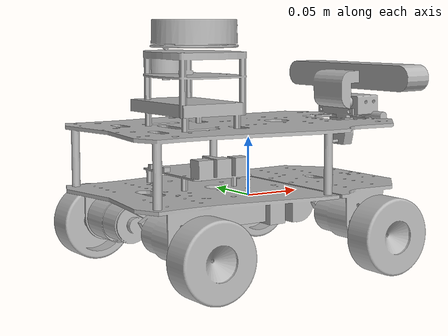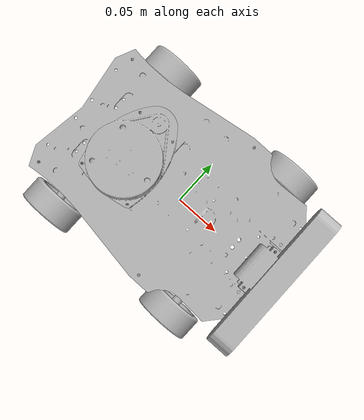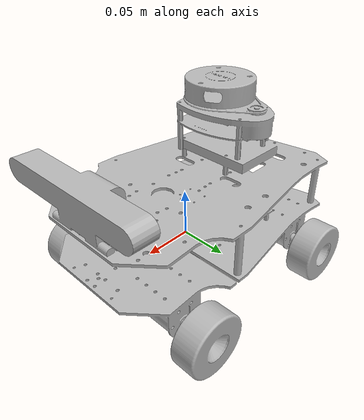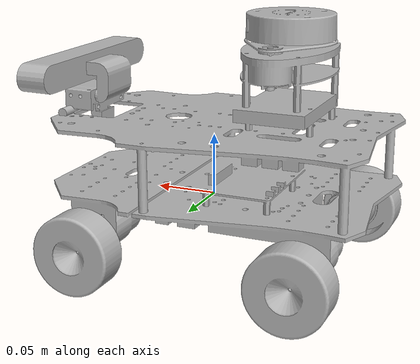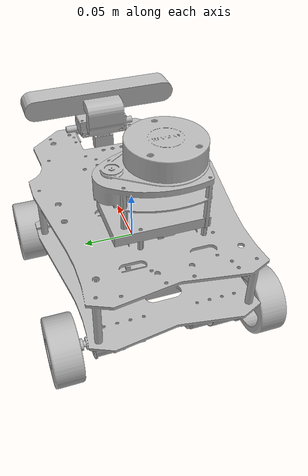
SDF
<?xml version="1.0" ?>
<sdf version="1.6">
  <model name="wheeltec">
    <!-- Base Link -->
    <link name="base_link">
      <visual name="base_visual">
        <pose>0 0 0 0 0 0</pose>
        <geometry>
          <mesh>
            <uri>file://../meshes/mini_4wd/meshes/mini_4wd/base_link.STL</uri>
          </mesh>
        </geometry>
      </visual>
      <collision name="base_collision">
        <pose>0 0 0 0 0 0</pose>
        <geometry>
          <mesh>
            <uri>file://../meshes/mini_4wd/meshes/mini_4wd/base_link.STL</uri>
          </mesh>
        </geometry>
      </collision>
      <inertial>
        <mass>2.5</mass>
        <inertia>
          <ixx>0.01</ixx> <ixy>0</ixy> <ixz>0</ixz>
          <iyy>0.01</iyy> <iyz>0</iyz>
          <izz>0.01</izz>
        </inertia>
      </inertial>
    </link>

    <!-- Right Front Wheel Link -->
    <link name="right_front_wheel_link">
      <visual name="right_front_visual">
        <pose>0.0715 -0.09 -0.027 0 0 0</pose>
        <geometry>
          <mesh>
            <uri>file://../meshes/mini_4wd/meshes/mini_4wd/right_front_wheel_link.STL</uri>
          </mesh>
        </geometry>
      </visual>
      <collision name="right_front_collision">
        <pose>0.0715 -0.09 -0.027 0 0 0</pose>
        <geometry>
          <mesh>
            <uri>file://../meshes/mini_4wd/meshes/mini_4wd/right_front_wheel_link.STL</uri>
          </mesh>
        </geometry>
      </collision>
      <inertial>
        <mass>0.1</mass>
        <inertia>
          <ixx>0.0005</ixx> <ixy>0</ixy> <ixz>0</ixz>
          <iyy>0.0005</iyy> <iyz>0</iyz>
          <izz>0.0005</izz>
        </inertia>
      </inertial>
    </link>
    <joint name="right_front_wheel_joint" type="revolute">
      <parent>base_link</parent>
      <child>right_front_wheel_link</child>
      <pose>0.0715 -0.09 -0.027 0 0 0</pose>
      <axis>
        <xyz>0 1 0</xyz>
        <limit>
          <lower>-1000</lower>
          <upper>1000</upper>
        </limit>
      </axis>
    </joint>

    <!-- Left Front Wheel Link -->
    <link name="left_front_wheel_link">
      <visual name="left_front_visual">
        <pose>0.072 0.09 -0.027 0 0 3.14159</pose>
        <geometry>
          <mesh>
            <uri>file://../meshes/mini_4wd/meshes/mini_4wd/right_front_wheel_link.STL</uri>
          </mesh>
        </geometry>
      </visual>
      <collision name="left_front_collision">
        <pose>0.072 0.09 -0.027 0 0 3.14159</pose>
        <geometry>
          <mesh>
            <uri>file://../meshes/mini_4wd/meshes/mini_4wd/right_front_wheel_link.STL</uri>
          </mesh>
        </geometry>
      </collision>
      <inertial>
        <mass>0.1</mass>
        <inertia>
          <ixx>0.0005</ixx> <ixy>0</ixy> <ixz>0</ixz>
          <iyy>0.0005</iyy> <iyz>0</iyz>
          <izz>0.0005</izz>
        </inertia>
      </inertial>
    </link>
    <joint name="left_front_wheel_joint" type="revolute">
      <parent>base_link</parent>
      <child>left_front_wheel_link</child>
      <pose>0.072 0.09 -0.027 0 0 0</pose>
      <axis>
        <xyz>0 1 0</xyz>
        <limit>
          <lower>-1000</lower>
          <upper>1000</upper>
        </limit>
      </axis>
    </joint>

    <!-- Right Rear Wheel Link -->
    <link name="right_rear_wheel_link">
      <visual name="right_rear_visual">
        <pose>-0.1 -0.09 -0.027 0 0 0</pose>
        <geometry>
          <mesh>
            <uri>file://../meshes/mini_4wd/meshes/mini_4wd/right_front_wheel_link.STL</uri>
          </mesh>
        </geometry>
      </visual>
      <collision name="right_rear_collision">
        <pose>-0.1 -0.09 -0.027 0 0 0</pose>
        <geometry>
          <mesh>
            <uri>file://../meshes/mini_4wd/meshes/mini_4wd/right_front_wheel_link.STL</uri>
          </mesh>
        </geometry>
      </collision>
      <inertial>
        <mass>0.1</mass>
        <inertia>
          <ixx>0.0005</ixx> <ixy>0</ixy> <ixz>0</ixz>
          <iyy>0.0005</iyy> <iyz>0</iyz>
          <izz>0.0005</izz>
        </inertia>
      </inertial>
    </link>
    <joint name="right_rear_wheel_joint" type="revolute">
      <parent>base_link</parent>
      <child>right_rear_wheel_link</child>
      <pose>-0.1 -0.09 -0.027 0 0 0</pose>
      <axis>
        <xyz>0 1 0</xyz>
        <limit>
          <lower>-1000</lower>
          <upper>1000</upper>
        </limit>
      </axis>
    </joint>

    <!-- Left Rear Wheel Link -->
    <link name="left_rear_wheel_link">
      <visual name="left_rear_visual">
        <pose>-0.1 0.09 -0.027 0 0 3.14159</pose>
        <geometry>
          <mesh>
            <uri>file://../meshes/mini_4wd/meshes/mini_4wd/right_front_wheel_link.STL</uri>
          </mesh>
        </geometry>
      </visual>
      <collision name="left_rear_collision">
        <pose>-0.1 0.09 -0.027 0 0 3.14159</pose>
        <geometry>
          <mesh>
            <uri>file://../meshes/mini_4wd/meshes/mini_4wd/right_front_wheel_link.STL</uri>
          </mesh>
        </geometry>
      </collision>
      <inertial>
        <mass>0.1</mass>
        <inertia>
          <ixx>0.0005</ixx> <ixy>0</ixy> <ixz>0</ixz>
          <iyy>0.0005</iyy> <iyz>0</iyz>
          <izz>0.0005</izz>
        </inertia>
      </inertial>
    </link>
    <joint name="left_rear_wheel_joint" type="revolute">
      <parent>base_link</parent>
      <child>left_rear_wheel_link</child>
      <pose>-0.1 0.09 -0.027 0 0 0</pose>
      <axis>
        <xyz>0 1 0</xyz>
        <limit>
          <lower>-1000</lower>
          <upper>1000</upper>
        </limit>
      </axis>
    </joint>

    <!-- Differential Drive Plugin -->
    <plugin name="diff_drive" filename="libgazebo_ros_diff_drive.so">
      <ros>
        <namespace>wheeltec</namespace> <!-- No leading slash -->
        <remapping>odom:=odom</remapping>
        <remapping>cmd_vel:=cmd_vel</remapping>
      </ros>
      <left_joint>left_rear_wheel_joint</left_joint>
      <right_joint>right_rear_wheel_joint</right_joint>
      <wheel_separation>0.18</wheel_separation>
      <wheel_diameter>0.075</wheel_diameter>
      <max_wheel_torque>10.0</max_wheel_torque>
      <max_wheel_acceleration>5.0</max_wheel_acceleration>
      <odometry_frame>odom</odometry_frame>
      <robot_base_frame>base_link</robot_base_frame>
      <publish_odom>true</publish_odom>
      <publish_odom_tf>true</publish_odom_tf>
    </plugin>

    <!-- C70 Camera Link -->
    <link name="c70_link">
      <inertial>
        <mass>0.05</mass>
        <inertia>
          <ixx>1e-5</ixx> <ixy>0</ixy> <ixz>0</ixz>
          <iyy>1e-5</iyy> <iyz>0</iyz>
          <izz>1e-5</izz>
        </inertia>
      </inertial>
      <visual name="c70_visual">
        <pose>0.13 0 0.1 0 0 0</pose>
        <geometry>
          <mesh>
            <uri>file://../meshes/mini_4wd/meshes/mini_4wd/camera_link.STL</uri>
          </mesh>
        </geometry>
      </visual>
      <collision name="c70_collision">
        <pose>0.13 0 0.1 0 0 0</pose>
        <geometry>
          <mesh>
            <uri>file://../meshes/mini_4wd/meshes/mini_4wd/camera_link.STL</uri>
          </mesh>
        </geometry>
      </collision>
      <sensor name="c70_camera" type="camera">
        <pose>0.13 0 0.1 0 0 0</pose>
        <always_on>true</always_on>
        <update_rate>25.0</update_rate>
        <camera>
          <horizontal_fov>1.125</horizontal_fov>
          <image>
            <format>R8G8B8</format>
            <width>1280</width>
            <height>720</height>
          </image>
          <clip>
            <near>0.05</near>
            <far>8.0</far>
          </clip>
          <noise>
            <type>gaussian</type>
            <mean>0.0</mean>
            <stddev>0.007</stddev>
          </noise>
        </camera>
        <plugin name="c70_camera_controller" filename="libgazebo_ros_camera.so">
          <ros>
            <namespace>c70</namespace> <!-- No leading slash -->
            <remapping>image_raw:=image_raw</remapping>
            <remapping>camera_info:=camera_info</remapping>
          </ros>
          <frame_name>c70_frame_optical</frame_name>
        </plugin>
      </sensor>
    </link>
    <joint name="c70_joint" type="fixed">
      <parent>base_link</parent>
      <child>c70_link</child>
      <pose>0.13 0 0.1 0 0 0</pose>
    </joint>
    <link name="c70_frame_optical" />
    <joint name="c70_optical_joint" type="fixed">
      <parent>c70_link</parent>
      <child>c70_frame_optical</child>
      <pose>0 0 0 -1.5708 0 -1.5708</pose>
    </joint>

    <!-- RPLIDAR Link (Adapted to 镭神N10P) -->
    <link name="rplidar_link">
      <inertial>
        <mass>0.001</mass>
        <inertia>
          <ixx>1e-6</ixx> <ixy>0</ixy> <ixz>0</ixz>
          <iyy>1e-6</iyy> <iyz>0</iyz>
          <izz>1e-6</izz>
        </inertia>
      </inertial>
      <visual name="rplidar_visual">
        <pose>-0.06 -0.01 0.15 0 0 4.712385</pose>
        <geometry>
          <mesh>
            <uri>file://../meshes/mini_4wd/meshes/mini_4wd/rplidar_link.STL</uri>
          </mesh>
        </geometry>
      </visual>
      <collision name="rplidar_collision">
        <pose>-0.06 -0.01 0.15 0 0 4.712385</pose>
        <geometry>
          <mesh>
            <uri>file://../meshes/mini_4wd/meshes/mini_4wd/rplidar_link.STL</uri>
          </mesh>
        </geometry>
      </collision>
      <sensor name="rplidar" type="ray">
        <pose>-0.06 -0.01 0.15 0 0 4.712385</pose>
        <visualize>true</visualize>
        <update_rate>10.0</update_rate>
        <ray>
          <scan>
            <horizontal>
              <samples>720</samples>
              <resolution>1</resolution>
              <min_angle>-3.14159</min_angle>
              <max_angle>3.14159</max_angle>
            </horizontal>
          </scan>
          <range>
            <min>0.10</min>
            <max>25.0</max>
            <resolution>0.01</resolution>
          </range>
          <noise>
            <type>gaussian</type>
            <mean>0.0</mean>
            <stddev>0.0</stddev>
          </noise>
        </ray>
        <plugin name="gazebo_rplidar" filename="libgazebo_ros_ray_sensor.so">
          <ros>
            <namespace>rplidar</namespace> <!-- No leading slash -->
            <remapping>scan:=scan</remapping>
          </ros>
          <frame_name>rplidar_link</frame_name>
        </plugin>
      </sensor>
    </link>
    <joint name="rplidar_joint" type="fixed">
      <parent>base_link</parent>
      <child>rplidar_link</child>
      <pose>-0.06 -0.01 0.15 0 0 4.712385</pose>
    </joint>
  </model>
</sdf>
